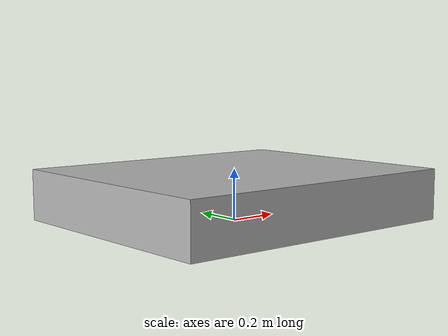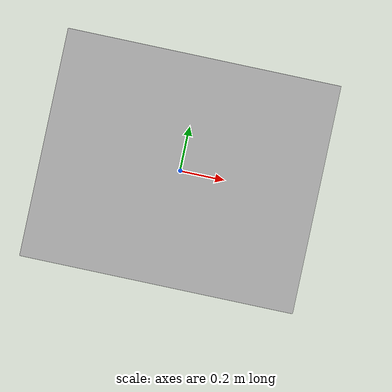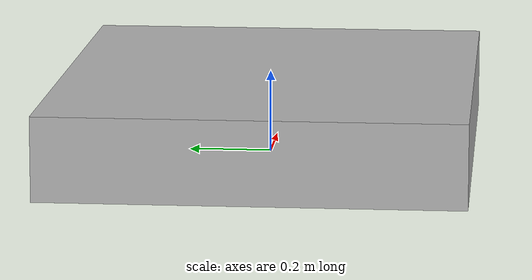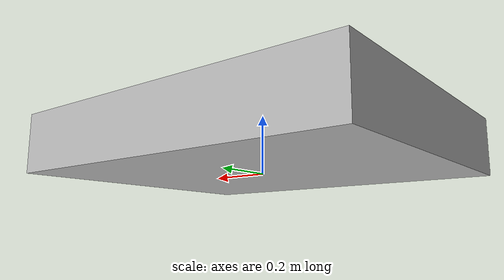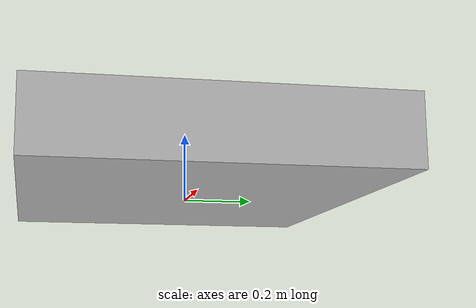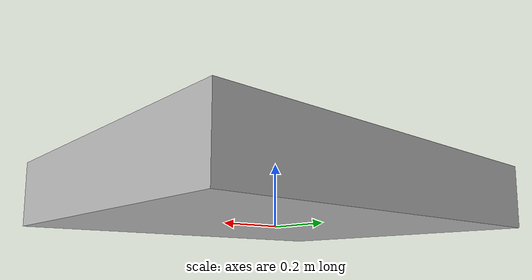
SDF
<?xml version="1.0"?>
<sdf version="1.6">
<model name="Color Tutorial Model">
    <static>true</static>
    <link name="robot_link">
      <collision name="body_collision">
      <pose>0 0 0.1 0 0 0</pose>
        <geometry>
          <box>
            <size>1.2 1.0 0.2</size>
          </box>
        </geometry>
      </collision>
      <visual name="body_visual">
      <pose>0 0 0.1 0 0 0</pose>
        <geometry>
          <box>
            <size>1.2 1.0 0.2</size>
          </box>
        </geometry>
      </visual>
    </link>
  </model>
</sdf>
